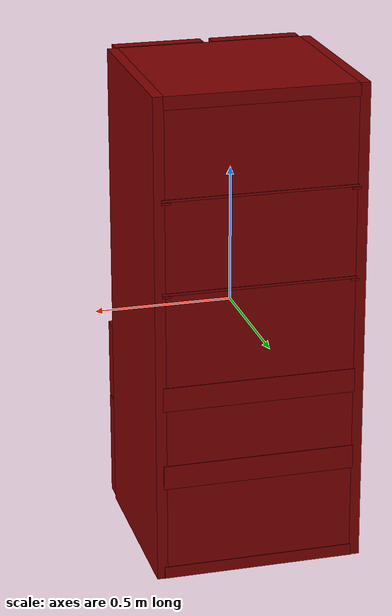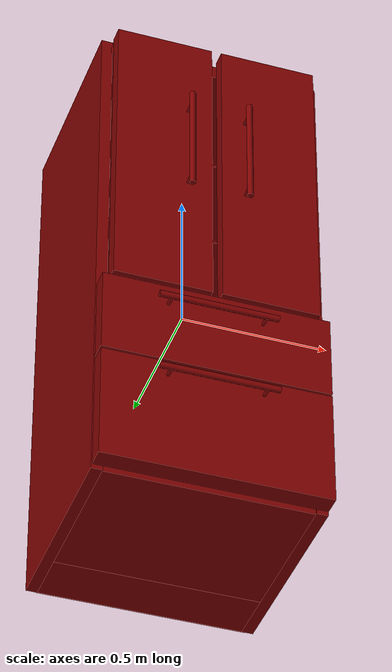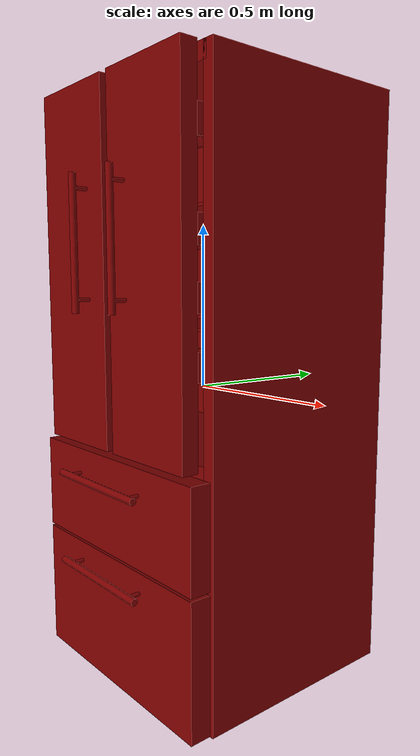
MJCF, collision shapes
<mujoco model="model">
  <compiler angle="radian"/>
  <asset>
    <mesh file="visuals/Body001.obj" name="Body001_vis"/>
    <mesh file="visuals/Body001_Clear.obj" name="Body001_Clear_vis"/>
    <mesh file="visuals/Door001.obj" name="Door001_vis"/>
    <mesh file="visuals/Door001_Clear.obj" name="Door001_Clear_vis"/>
    <mesh file="visuals/Door002.obj" name="Door002_vis"/>
    <mesh file="visuals/Door002_Clear.obj" name="Door002_Clear_vis"/>
    <mesh file="visuals/Drawer001.obj" name="Drawer001_vis"/>
    <mesh file="visuals/Drawer002.obj" name="Drawer002_vis"/>
    <texture file="visuals/T_BC001.png" name="Body001_material" type="2d"/>
    <material name="Body001_material" rgba="1 1 1 1.0" texture="Body001_material" shininess="0.141421377658844" specular="0.3103448502657381"/>
    <texture file="visuals/T_BC001.png" name="Body001_Clear_material" type="2d"/>
    <material name="Body001_Clear_material" rgba="1 1 1 0.30000001192092896" texture="Body001_Clear_material" shininess="0.141421377658844" specular="0.3103448502657381"/>
    <texture file="visuals/T_BC001.png" name="Door001_material" type="2d"/>
    <material name="Door001_material" rgba="1 1 1 1.0" texture="Door001_material" shininess="0.141421377658844" specular="0.3103448502657381"/>
    <texture file="visuals/T_BC001.png" name="Door001_Clear_material" type="2d"/>
    <material name="Door001_Clear_material" rgba="1 1 1 0.30000001192092896" texture="Door001_Clear_material" shininess="0.141421377658844" specular="0.3103448502657381"/>
    <texture file="visuals/T_BC001.png" name="Door002_material" type="2d"/>
    <material name="Door002_material" rgba="1 1 1 1.0" texture="Door002_material" shininess="0.141421377658844" specular="0.3103448502657381"/>
    <texture file="visuals/T_BC001.png" name="Door002_Clear_material" type="2d"/>
    <material name="Door002_Clear_material" rgba="1 1 1 0.30000001192092896" texture="Door002_Clear_material" shininess="0.141421377658844" specular="0.3103448502657381"/>
    <texture file="visuals/T_BC001.png" name="Drawer001_material" type="2d"/>
    <material name="Drawer001_material" rgba="1 1 1 1.0" texture="Drawer001_material" shininess="0.141421377658844" specular="0.3103448502657381"/>
    <texture file="visuals/T_BC001.png" name="Drawer002_material" type="2d"/>
    <material name="Drawer002_material" rgba="1 1 1 1.0" texture="Drawer002_material" shininess="0.141421377658844" specular="0.3103448502657381"/>
  </asset>
  <default>
    <default class="visual">
      <geom conaffinity="0" contype="0" group="1" type="mesh"/>
    </default>
    <default class="collision">
      <geom group="0" rgba="0.5 0 0 0.5"/>
    </default>
    <default class="spawn">
      <geom group="0" rgba="1 1 1 0.5" contype="0" conaffinity="0"/>
      <site group="0" rgba="1 1 1 0.5"/>
    </default>
    <default class="region">
      <geom group="1" conaffinity="0" contype="0" rgba="0 1 0 0"/>
    </default>
  </default>
  <worldbody>
    <body>
      <body name="object">
        <geom mesh="Body001_vis" type="mesh" solimp="0.998 0.998 0.001" solref="0.001 1" density="100" friction="0.95 0.3 0.1" class="visual" material="Body001_material"/>
        <geom class="collision" type="box" pos="-0.359633 0.061291 0.000301" size="0.019000044092535973 0.3400907516479492 0.8883690237998962" quat="1.0 0.0 0.0 0.0"/>
        <geom class="collision" type="box" pos="0.003448 0.313230 -0.020902" size="0.3488938808441162 0.08815132826566696 0.8668429255485535" quat="1.0 0.0 0.0 0.0"/>
        <geom class="collision" type="box" pos="0.359491 0.061291 0.000301" size="0.019143246114253998 0.3400907516479492 0.8883690237998962" quat="1.0 0.0 0.0 0.0"/>
        <geom class="collision" type="box" pos="0.003448 0.061291 0.865118" size="0.3488938808441162 0.3400907516479492 0.023551570251584053" quat="1.0 0.0 0.0 0.0"/>
        <geom class="collision" type="box" pos="0.003448 0.064268 -0.194843" size="0.3488938808441162 0.34017038345336914 0.04420214518904686" quat="1.0 0.0 0.0 0.0"/>
        <geom class="collision" type="box" pos="0.003448 0.065758 -0.491979" size="0.3488938808441162 0.3386799693107605 0.044169098138809204" quat="1.0 0.0 0.0 0.0"/>
        <geom class="collision" type="box" pos="0.003448 0.065648 -0.865500" size="0.3488938808441162 0.33856913447380066 0.022020233795046806" quat="1.0 0.0 0.0 0.0"/>
        <geom class="collision" type="box" pos="0.336712 0.106102 0.184647" size="0.015630198642611504 0.2983231842517853 0.003954083658754826" quat="1.0 0.0 0.0 0.0"/>
        <geom class="collision" type="box" pos="-0.337730 0.106102 0.184647" size="0.015630198642611504 0.2983231842517853 0.003954083658754826" quat="1.0 0.0 0.0 0.0"/>
        <geom class="collision" type="box" pos="0.336712 0.106067 0.518259" size="0.015630198642611504 0.29828882217407227 0.003954083658754826" quat="1.0 0.0 0.0 0.0"/>
        <geom class="collision" type="box" pos="-0.337730 0.106067 0.518259" size="0.015630198642611504 0.29828882217407227 0.003954083658754826" quat="1.0 0.0 0.0 0.0"/>
        <body name="Body001_Clear">
          <geom mesh="Body001_Clear_vis" type="mesh" solimp="0.998 0.998 0.001" solref="0.001 1" density="100" friction="0.95 0.3 0.1" class="visual" material="Body001_Clear_material"/>
          <geom class="collision" type="box" pos="0.003448 0.108875 0.528211" size="0.3488938808441162 0.29548150300979614 0.004475087858736515" quat="1.0 0.0 0.0 0.0"/>
          <geom class="collision" type="box" pos="0.003448 0.108909 0.193771" size="0.3488938808441162 0.29551589488983154 0.004475087858736515" quat="1.0 0.0 0.0 0.0"/>
        </body>
        <body name="Door001">
          <joint axis="0.0 0.0 -1.0" pos="-0.330284 -0.322315 0.361417" limited="true" name="Door001_joint" range="0.0 1.5707963267948966" type="hinge" damping="1" frictionloss="1" armature=".01" stiffness="0.05"/>
          <geom mesh="Door001_vis" type="mesh" solimp="0.998 0.998 0.001" solref="0.001 1" density="100" friction="0.95 0.3 0.1" class="visual" material="Door001_material"/>
          <geom class="collision" type="box" pos="-0.178816 -0.324345 0.360977" size="0.16399596631526947 0.02611648105084896 0.5244346261024475" quat="1.0 0.0 0.0 0.0"/>
          <geom class="collision" type="cylinder" pos="-0.097477 -0.395381 0.431683" size="0.010426044464111328 0.1963866651058197" quat="1.0 0.0 0.0 0.0"/>
          <geom class="collision" type="cylinder" pos="-0.097477 -0.368459 0.274255" size="0.005949943792074919 0.01835515722632408" quat="0.7071067094802856 0.7071068286895752 0.0 0.0"/>
          <geom class="collision" type="cylinder" pos="-0.097477 -0.368971 0.586532" size="0.005949943792074919 0.01835515722632408" quat="0.7071067094802856 0.7071068286895752 0.0 0.0"/>
          <body name="Door001_Clear">
            <geom mesh="Door001_Clear_vis" type="mesh" solimp="0.998 0.998 0.001" solref="0.001 1" density="100" friction="0.95 0.3 0.1" class="visual" material="Door001_Clear_material"/>
            <geom class="collision" type="box" pos="-0.205290 -0.194112 0.103778" size="0.11674992740154266 0.005236801691353321 0.039874859154224396" quat="1.0 0.0 0.0 0.0"/>
            <geom class="collision" type="box" pos="-0.205290 -0.194112 0.280128" size="0.11674992740154266 0.005236793775111437 0.03987477347254753" quat="1.0 0.0 0.0 0.0"/>
            <geom class="collision" type="box" pos="-0.205290 -0.194112 0.449468" size="0.11674992740154266 0.005236785393208265 0.039874687790870667" quat="1.0 0.0 0.0 0.0"/>
            <geom class="collision" type="box" pos="-0.205290 -0.194112 0.710636" size="0.11674992740154266 0.005236777476966381 0.0398746021091938" quat="1.0 0.0 0.0 0.0"/>
            <geom class="collision" type="box" pos="-0.205290 -0.241024 0.068884" size="0.11674989759922028 0.04351221024990082 0.004980414640158415" quat="1.0 0.0 0.0 0.0"/>
            <geom class="collision" type="box" pos="-0.205290 -0.241024 0.245234" size="0.11674989759922028 0.04351219907402992 0.004980413243174553" quat="1.0 0.0 0.0 0.0"/>
            <geom class="collision" type="box" pos="-0.205290 -0.241024 0.414575" size="0.11674989759922028 0.04351218789815903 0.004980411380529404" quat="1.0 0.0 0.0 0.0"/>
            <geom class="collision" type="box" pos="-0.205290 -0.241024 0.675742" size="0.11674989759922028 0.04351217672228813 0.004980409983545542" quat="1.0 0.0 0.0 0.0"/>
            <geom class="collision" type="box" pos="-0.319797 -0.241024 0.105793" size="0.004439220298081636 0.04351215809583664 0.0396893247961998" quat="1.0 0.0 0.0 0.0"/>
            <geom class="collision" type="box" pos="-0.319797 -0.241024 0.282143" size="0.004439220298081636 0.043512146919965744 0.0396893136203289" quat="1.0 0.0 0.0 0.0"/>
            <geom class="collision" type="box" pos="-0.319797 -0.241024 0.451484" size="0.004439220298081636 0.04351213574409485 0.03968930244445801" quat="1.0 0.0 0.0 0.0"/>
            <geom class="collision" type="box" pos="-0.319797 -0.241024 0.712651" size="0.004439220298081636 0.04351212456822395 0.03968929126858711" quat="1.0 0.0 0.0 0.0"/>
            <geom class="collision" type="box" pos="-0.090239 -0.241024 0.105793" size="0.0044392189010977745 0.04351210594177246 0.03968926891684532" quat="1.0 0.0 0.0 0.0"/>
            <geom class="collision" type="box" pos="-0.090239 -0.241024 0.282143" size="0.0044392189010977745 0.043512094765901566 0.03968925401568413" quat="1.0 0.0 0.0 0.0"/>
            <geom class="collision" type="box" pos="-0.090239 -0.241024 0.451484" size="0.0044392189010977745 0.04351208359003067 0.03968924283981323" quat="1.0 0.0 0.0 0.0"/>
            <geom class="collision" type="box" pos="-0.090239 -0.241024 0.712651" size="0.0044392189010977745 0.043512072414159775 0.03968923166394234" quat="1.0 0.0 0.0 0.0"/>
          </body>
        </body>
        <body name="Door002">
          <joint axis="0.0 0.0 1.0" pos="0.332672 -0.323080 0.361417" limited="true" name="Door002_joint" range="0.0 1.5707963267948966" type="hinge" damping="1" frictionloss="1" armature=".01" stiffness="0.05"/>
          <geom mesh="Door002_vis" type="mesh" solimp="0.998 0.998 0.001" solref="0.001 1" density="100" friction="0.95 0.3 0.1" class="visual" material="Door002_material"/>
          <geom class="collision" type="cylinder" pos="0.099135 -0.370536 0.586532" size="0.005949943792074919 0.01835515722632408" quat="0.7071067094802856 0.7071068286895752 0.0 0.0"/>
          <geom class="collision" type="cylinder" pos="0.099135 -0.370024 0.274255" size="0.005949943792074919 0.01835515722632408" quat="0.7071067094802856 0.7071068286895752 0.0 0.0"/>
          <geom class="collision" type="cylinder" pos="0.099135 -0.395381 0.431683" size="0.010426044464111328 0.1963866651058197" quat="1.0 0.0 0.0 0.0"/>
          <geom class="collision" type="box" pos="0.181471 -0.325542 0.360977" size="0.16381490230560303 0.025374827906489372 0.5244316458702087" quat="1.0 0.0 0.0 0.0"/>
          <body name="Door002_Clear">
            <geom mesh="Door002_Clear_vis" type="mesh" solimp="0.998 0.998 0.001" solref="0.001 1" density="100" friction="0.95 0.3 0.1" class="visual" material="Door002_Clear_material"/>
            <geom class="collision" type="box" pos="0.206015 -0.194112 0.710636" size="0.11674992740154266 0.005236928816884756 0.03987622633576393" quat="1.0 0.0 0.0 0.0"/>
            <geom class="collision" type="box" pos="0.206015 -0.241024 0.675742" size="0.11674989759922028 0.04351241886615753 0.004980443511158228" quat="1.0 0.0 0.0 0.0"/>
            <geom class="collision" type="box" pos="0.091508 -0.241024 0.712651" size="0.004439220298081636 0.04351240023970604 0.039689596742391586" quat="1.0 0.0 0.0 0.0"/>
            <geom class="collision" type="box" pos="0.321065 -0.241024 0.712651" size="0.0044392189010977745 0.04351238161325455 0.039689574390649796" quat="1.0 0.0 0.0 0.0"/>
            <geom class="collision" type="box" pos="0.206015 -0.194112 0.449468" size="0.11674992740154266 0.005236897151917219 0.03987588360905647" quat="1.0 0.0 0.0 0.0"/>
            <geom class="collision" type="box" pos="0.206015 -0.241024 0.414575" size="0.11674989759922028 0.04351237788796425 0.004980437457561493" quat="1.0 0.0 0.0 0.0"/>
            <geom class="collision" type="box" pos="0.091508 -0.241024 0.451484" size="0.004439220298081636 0.04351235553622246 0.03968954458832741" quat="1.0 0.0 0.0 0.0"/>
            <geom class="collision" type="box" pos="0.321065 -0.241024 0.451484" size="0.0044392189010977745 0.043512336909770966 0.039689525961875916" quat="1.0 0.0 0.0 0.0"/>
            <geom class="collision" type="box" pos="0.206015 -0.194112 0.280128" size="0.11674992740154266 0.005236865021288395 0.03987554460763931" quat="1.0 0.0 0.0 0.0"/>
            <geom class="collision" type="box" pos="0.206015 -0.241024 0.245234" size="0.11674989759922028 0.04351233318448067 0.004980431403964758" quat="1.0 0.0 0.0 0.0"/>
            <geom class="collision" type="box" pos="0.091508 -0.241024 0.282143" size="0.004439220298081636 0.043512310832738876 0.03968949615955353" quat="1.0 0.0 0.0 0.0"/>
            <geom class="collision" type="box" pos="0.321065 -0.241024 0.282143" size="0.0044392189010977745 0.043512292206287384 0.039689477533102036" quat="1.0 0.0 0.0 0.0"/>
            <geom class="collision" type="box" pos="0.206015 -0.194112 0.103778" size="0.11674992740154266 0.005236833356320858 0.039875201880931854" quat="1.0 0.0 0.0 0.0"/>
            <geom class="collision" type="box" pos="0.206015 -0.241024 0.068884" size="0.11674989759922028 0.043512288480997086 0.004980425350368023" quat="1.0 0.0 0.0 0.0"/>
            <geom class="collision" type="box" pos="0.091508 -0.241024 0.105793" size="0.004439220298081636 0.04351226985454559 0.03968944773077965" quat="1.0 0.0 0.0 0.0"/>
            <geom class="collision" type="box" pos="0.321065 -0.241024 0.105793" size="0.0044392189010977745 0.0435122475028038 0.03968942537903786" quat="1.0 0.0 0.0 0.0"/>
          </body>
        </body>
        <body name="Drawer001">
          <joint axis="0.0 -1.0 0.0" pos="0.000069 -0.101108 -0.326397" limited="true" name="Drawer001_joint" range="0.0 0.3" type="slide" damping="1" frictionloss="1" armature=".01" stiffness="0.05"/>
          <geom mesh="Drawer001_vis" type="mesh" solimp="0.998 0.998 0.001" solref="0.001 1" density="100" friction="0.95 0.3 0.1" class="visual" material="Drawer001_material"/>
          <geom class="collision" type="box" pos="-0.000188 -0.318547 -0.327505" size="0.3769320249557495 0.031620871275663376 0.1460256427526474" quat="1.0 0.0 0.0 0.0"/>
          <geom class="collision" type="cylinder" pos="-0.009031 -0.396207 -0.256239" size="0.010426044464111328 0.1963866651058197" quat="0.7071068286895752 -0.0 0.7071067690849304 0.0"/>
          <geom class="collision" type="cylinder" pos="-0.163052 -0.374543 -0.256727" size="0.005949943792074919 0.01835515722632408" quat="0.7071067094802856 0.7071068286895752 0.0 0.0"/>
          <geom class="collision" type="cylinder" pos="0.149170 -0.374543 -0.256727" size="0.005949943792074919 0.01835515722632408" quat="0.7071067094802856 0.7071068286895752 0.0 0.0"/>
          <geom class="collision" type="box" pos="0.001021 0.195538 -0.355982" size="0.33801165223121643 0.008060550317168236 0.07988136261701584" quat="1.0 0.0 0.0 0.0"/>
          <geom class="collision" type="box" pos="0.330089 -0.058178 -0.355982" size="0.008944557048380375 0.24888737499713898 0.07988136261701584" quat="1.0 0.0 0.0 0.0"/>
          <geom class="collision" type="box" pos="-0.327725 -0.051733 -0.355982" size="0.0092649320140481 0.25533199310302734 0.07988130301237106" quat="1.0 0.0 0.0 0.0"/>
          <geom class="collision" type="box" pos="0.001851 -0.058178 -0.429680" size="0.32403823733329773 0.24888737499713898 0.007513308431953192" quat="1.0 0.0 0.0 0.0"/>
        </body>
        <body name="Drawer002">
          <joint axis="0.0 -1.0 0.0" pos="0.000062 -0.113241 -0.679368" limited="true" name="Drawer002_joint" range="0.0 0.3" type="slide" damping="1" frictionloss="1" armature=".01" stiffness="0.05"/>
          <geom mesh="Drawer002_vis" type="mesh" solimp="0.998 0.998 0.001" solref="0.001 1" density="100" friction="0.95 0.3 0.1" class="visual" material="Drawer002_material"/>
          <geom class="collision" type="box" pos="0.001851 -0.072510 -0.819569" size="0.32403823733329773 0.23455514013767242 0.007724323309957981" quat="1.0 0.0 0.0 0.0"/>
          <geom class="collision" type="box" pos="-0.327908 -0.072510 -0.697639" size="0.007267894223332405 0.23455514013767242 0.12790319323539734" quat="1.0 0.0 0.0 0.0"/>
          <geom class="collision" type="box" pos="0.326644 -0.072510 -0.697639" size="0.007267918903380632 0.23455514013767242 0.12790319323539734" quat="1.0 0.0 0.0 0.0"/>
          <geom class="collision" type="box" pos="-0.000466 0.169073 -0.697639" size="0.3342480957508087 0.010259716771543026 0.12790320813655853" quat="1.0 0.0 0.0 0.0"/>
          <geom class="collision" type="cylinder" pos="0.149170 -0.374543 -0.537925" size="0.005949943792074919 0.01835515722632408" quat="0.7071067094802856 0.7071068286895752 0.0 0.0"/>
          <geom class="collision" type="cylinder" pos="-0.163052 -0.374543 -0.537925" size="0.005949943792074919 0.01835515722632408" quat="0.7071067094802856 0.7071068286895752 0.0 0.0"/>
          <geom class="collision" type="cylinder" pos="-0.009031 -0.396207 -0.537437" size="0.010426044464111328 0.1963866651058197" quat="0.7071068286895752 -0.0 0.7071067690849304 0.0"/>
          <geom class="collision" type="box" pos="-0.000188 -0.318547 -0.680150" size="0.3769320249557495 0.031620871275663376 0.19834721088409424" quat="1.0 0.0 0.0 0.0"/>
        </body>
        <geom class="region" name="reg_main" type="box" pos="0.00039600000000000746 0.022120500000000015 0.0" size="0.38282 0.3836935 0.890381"/>
      </body>
    </body>
  </worldbody>
  <actuator>
    <motor name="Door001_joint_actuator" joint="Door001_joint" gear="50"/>
    <motor name="Door002_joint_actuator" joint="Door002_joint" gear="50"/>
    <motor name="Drawer001_joint_actuator" joint="Drawer001_joint" gear="50"/>
    <motor name="Drawer002_joint_actuator" joint="Drawer002_joint" gear="50"/>
  </actuator>
</mujoco>
